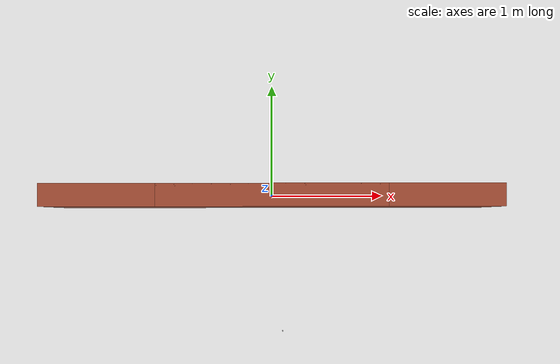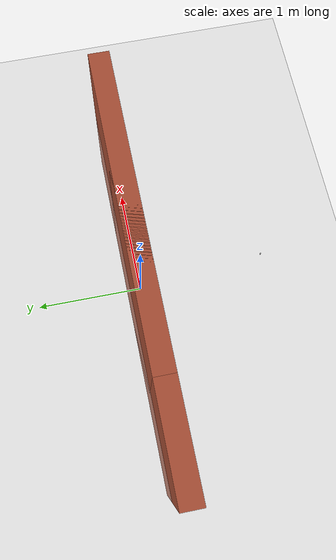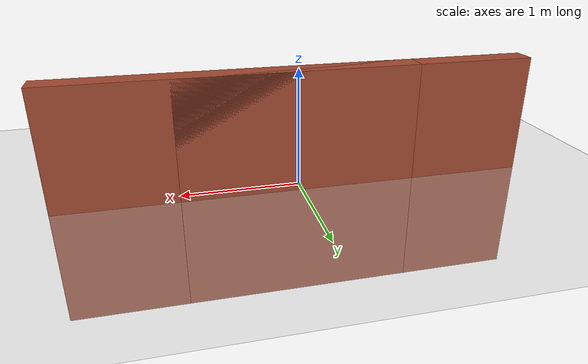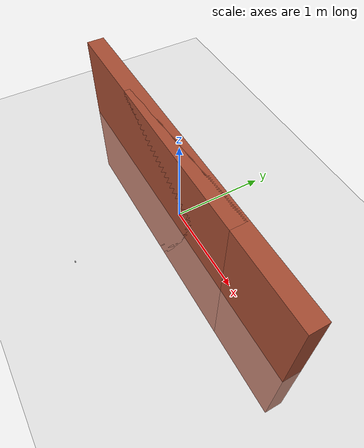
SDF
<sdf version="1.4">
 <world name="default">
  <scene><sky><clouds><speed>12</speed></clouds></sky></scene>
  <include><uri>model://sun</uri></include>
  <physics type="ode"><gravity>0.0 0.0 -9.81000000</gravity></physics>
  <model name="piso2_model">
   <allow_auto_disable>0</allow_auto_disable>
   <link name="piso2_link">
    <collision name="piso2_geom">
     <geometry><plane><normal>0 0 1</normal><size>30 30</size></plane></geometry>
     <surface>
      <friction>
       <ode><mu>50</mu><mu2>50</mu2><fdir1>0.0 0.0 0.0</fdir1><slip1>0.0010000</slip1><slip2>0.0010000</slip2></ode>
      </friction>
      <bounce><restitution_coefficient>0.0</restitution_coefficient><threshold>100000.0</threshold></bounce>
      <contact>
       <ode>
        <soft_cfm>0.0</soft_cfm>
        <soft_erp>0.0</soft_erp>
        <kp>100000.0</kp>
        <kd>10.0</kd>
        <max_vel>100.0</max_vel>
        <min_depth>0.00</min_depth>
       </ode>
      </contact>
     </surface>
     <laser_retro>0.0</laser_retro>
    </collision>
    <visual name="piso2_geom_visual">
     <geometry><plane><normal>0 0 1</normal><size>30 30</size></plane></geometry>
     <material>
      <script><uri>file://media/materials/scripts/base.material</uri><name>mmdt/pisoHierba200dpi</name></script>
     </material>
     <laser_retro>0.0</laser_retro>
     <transparency>0.01</transparency>
    </visual>
   </link>
   <static>1</static>
  </model>
  <model name="grey_wallFront">
   <static>1</static>
   <link name="link">
    <collision name="collisionParedF"><geometry><box><size>2 0.2 2</size></box></geometry></collision>
    <visual name="visual">
     <cast_shadows>0</cast_shadows>
     <geometry><box><size>2 0.2 2</size></box></geometry>
     <material>
      <script><uri>file://media/materials/scripts/gazebo.material</uri><name>Gazebo/Bricks</name></script>
     </material>
    </visual>
    <sensor name="my_contact" type="contact">
     <plugin name="my_plugin" filename="libcontact.so"/>
     <contact><collision>collisionParedF</collision></contact>
     <update_rate>20</update_rate>
    </sensor>
   </link>
  </model>
  <model name="grey_wallTras">
   <static>1</static>
   <link name="link">
    <collision name="collisionParedT"><geometry><box><size>4 0.2 2</size></box></geometry></collision>
    <visual name="visual">
     <cast_shadows>0</cast_shadows>
     <geometry><box><size>4 0.2 2</size></box></geometry>
     <material>
      <script><uri>file://media/materials/scripts/gazebo.material</uri><name>Gazebo/Bricks</name></script>
     </material>
    </visual>
    <sensor name="my_contact" type="contact">
     <plugin name="my_plugin" filename="libcontact.so"/>
     <contact><collision>collisionParedT</collision></contact>
     <update_rate>20</update_rate>
    </sensor>
   </link>
  </model>
  <model name="beer">
   <link name="link">
    <pose>0 0 0.115 0 -0 0</pose>
    <visual name="visual">
     <geometry><cylinder><radius>0.0055</radius><length>0.023</length></cylinder></geometry>
     <material>
      <script>
       <uri>model://beer/materials/scripts</uri>
       <uri>model://beer/materials/textures</uri>
       <name>Beer/Diffuse</name>
      </script>
     </material>
    </visual>
   </link>
   <pose>0.096283 -1.22114 -7e-06 -1e-06 -0 -4e-06</pose>
  </model>
 </world>
</sdf>
